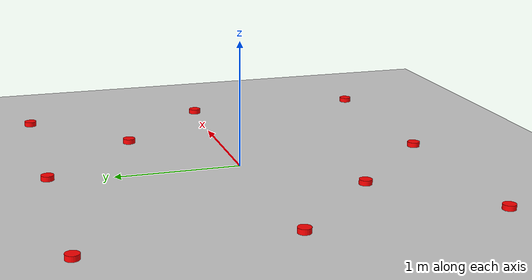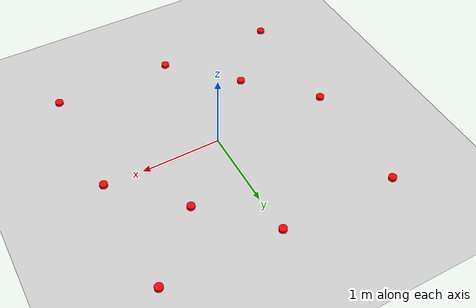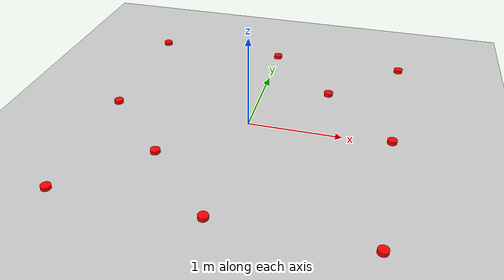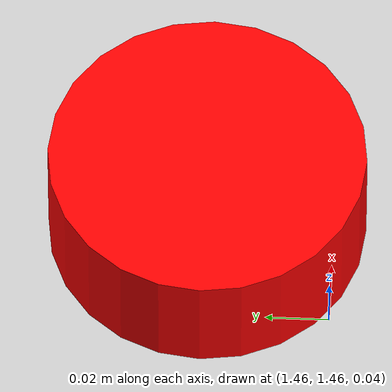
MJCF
<mujoco model="hockey_pucks_box">
    <!-- Compiler settings -->
    <compiler angle="degree" />

    <!-- Simulation options -->
    <option gravity="0 0 -9.81" timestep="0.002" />

    <!-- Asset definitions: Materials -->
    <asset>
        <!-- Red material for hockey pucks -->
        <material name="puck_mat" rgba="1 0 0 1"/> <!-- Red pucks -->
        <!-- Gray material for container walls -->
        <material name="wall_mat" rgba="0.8 0.8 0.8 1"/> <!-- Gray walls -->
    </asset>

    <!-- World body: Container and Hockey Pucks -->
    <worldbody>
        <!-- Container: A fixed body with six walls -->
        <body name="container" pos="0 0 0" type="fixed">

            <!-- Floor -->
            <geom name="floor" type="plane" size="10 10 0.1" material="wall_mat"
                  friction="0.8 0.3 0.1" solref="0.02 1" solimp="0.9 0.95 0.001" mass="100"/>

        </body>

        <!-- Hockey Pucks: 10 dynamic cylinder bodies -->
        <!-- Each puck is a separate body with a cylindrical geom -->
        <!-- Positions are arranged to avoid initial overlaps -->
        <body name="puck1" pos="-1.5 0 0.05">
            <geom type="cylinder" size="0.05 0.02" rgba="1 0 0 1" material="puck_mat"
                  mass="0.17" friction="0.5 0.3 0.1" solref="0.02 1" solimp="0.8 0.9 0.001" />
        </body>

        <body name="puck2" pos="1.5 0 0.05">
            <geom type="cylinder" size="0.05 0.02" rgba="1 0 0 1" material="puck_mat"
                  mass="0.17" friction="0.5 0.3 0.1" solref="0.02 1" solimp="0.8 0.9 0.001" />
        </body>

        <body name="puck3" pos="0 1.5 0.05">
            <geom type="cylinder" size="0.05 0.02" rgba="1 0 0 1" material="puck_mat"
                  mass="0.17" friction="0.5 0.3 0.1" solref="0.02 1" solimp="0.8 0.9 0.001" />
        </body>

        <body name="puck4" pos="0 -1.5 0.05">
            <geom type="cylinder" size="0.05 0.02" rgba="1 0 0 1" material="puck_mat"
                  mass="0.17" friction="0.5 0.3 0.1" solref="0.02 1" solimp="0.8 0.9 0.001" />
        </body>

        <body name="puck5" pos="1.5 1.5 0.05">
            <geom type="cylinder" size="0.05 0.02" rgba="1 0 0 1" material="puck_mat"
                  mass="0.17" friction="0.5 0.3 0.1" solref="0.02 1" solimp="0.8 0.9 0.001" />
        </body>

        <body name="puck6" pos="-1.5 1.5 0.05">
            <geom type="cylinder" size="0.05 0.02" rgba="1 0 0 1" material="puck_mat"
                  mass="0.17" friction="0.5 0.3 0.1" solref="0.02 1" solimp="0.8 0.9 0.001" />
        </body>

        <body name="puck7" pos="1.5 -1.5 0.05">
            <geom type="cylinder" size="0.05 0.02" rgba="1 0 0 1" material="puck_mat"
                  mass="0.17" friction="0.5 0.3 0.1" solref="0.02 1" solimp="0.8 0.9 0.001" />
        </body>

        <body name="puck8" pos="-1.5 -1.5 0.05">
            <geom type="cylinder" size="0.05 0.02" rgba="1 0 0 1" material="puck_mat"
                  mass="0.17" friction="0.5 0.3 0.1" solref="0.02 1" solimp="0.8 0.9 0.001" />
        </body>

        <body name="puck9" pos="0.75 0.75 0.05">
            <geom type="cylinder" size="0.05 0.02" rgba="1 0 0 1" material="puck_mat"
                  mass="0.17" friction="0.5 0.3 0.1" solref="0.02 1" solimp="0.8 0.9 0.001" />
        </body>

        <body name="puck10" pos="-0.75 -0.75 0.05">
            <geom type="cylinder" size="0.05 0.02" rgba="1 0 0 1" material="puck_mat"
                  mass="0.17" friction="0.5 0.3 0.1" solref="0.02 1" solimp="0.8 0.9 0.001" />
        </body>
    </worldbody>
</mujoco>
